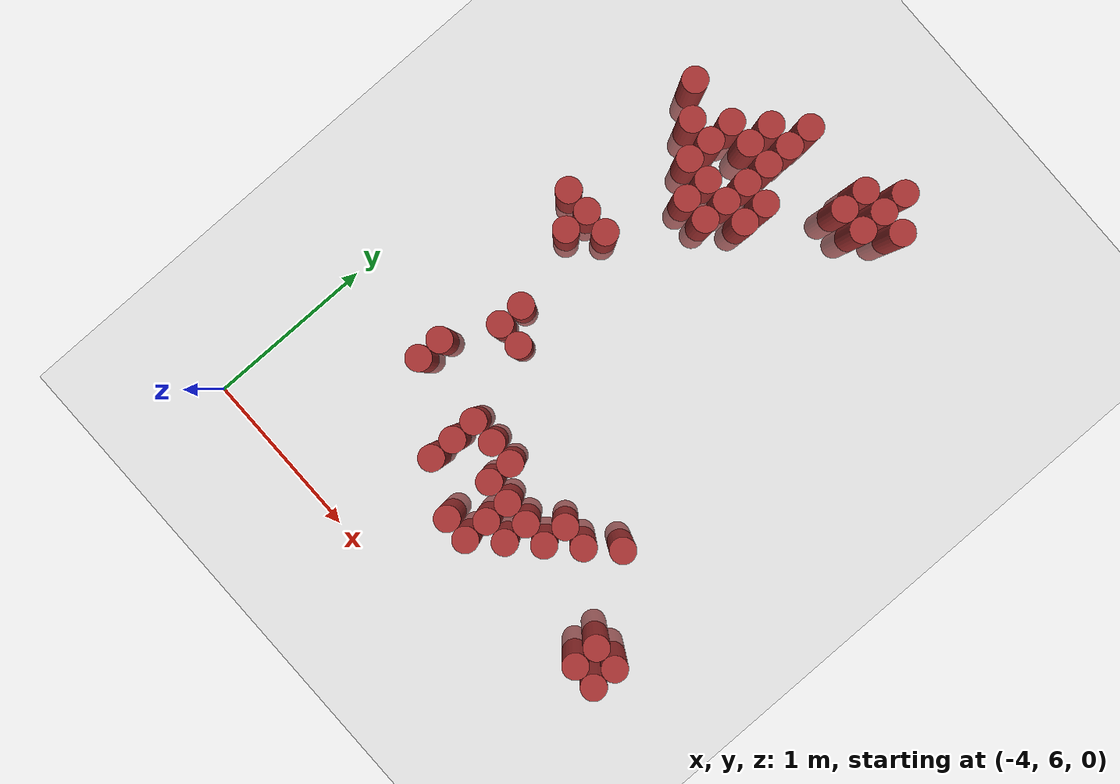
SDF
<sdf version="1.6">
 <world name="default">
  <model name="ground_plane">
   <static>1</static>
   <link name="link">
    <collision name="collision">
     <geometry><plane><normal>0 0 1</normal><size>100 100</size></plane></geometry>
     <surface><friction><ode><mu>100</mu><mu2>50</mu2></ode></friction></surface>
    </collision>
    <visual name="visual">
     <cast_shadows>0</cast_shadows>
     <geometry><plane><normal>0 0 1</normal><size>100 100</size></plane></geometry>
     <material>
      <script><uri>file://media/materials/scripts/gazebo.material</uri><name>Gazebo/Grey</name></script>
     </material>
    </visual>
   </link>
  </model>
  <model name="unit_cylinder_171">
   <static>1</static>
   <pose>-3.525000 8.175000 0.000000 0.000000 0.000000 0.000000</pose>
   <link name="link">
    <inertial>
     <mass>1</mass>
     <inertia><ixx>0.145833</ixx><ixy>0</ixy><ixz>0</ixz><iyy>0.145833</iyy><iyz>0</iyz><izz>0.125</izz></inertia>
    </inertial>
    <collision name="collision">
     <geometry><cylinder><radius>0.075000</radius><length>1</length></cylinder></geometry>
    </collision>
    <visual name="visual">
     <geometry><cylinder><radius>0.075000</radius><length>1</length></cylinder></geometry>
     <material>
      <ambient>0.648000 0.192000 0.192000 1</ambient>
      <diffuse>0.648000 0.192000 0.192000 1</diffuse>
     </material>
     <material>
      <script><name>Gazebo/Grey</name><uri>file://media/materials/scripts/gazebo.material</uri></script>
     </material>
    </visual>
   </link>
  </model>
  <model name="unit_cylinder_172">
   <static>1</static>
   <pose>-3.525000 9.075000 0.000000 0.000000 0.000000 0.000000</pose>
   <link name="link">
    <inertial>
     <mass>1</mass>
     <inertia><ixx>0.145833</ixx><ixy>0</ixy><ixz>0</ixz><iyy>0.145833</iyy><iyz>0</iyz><izz>0.125</izz></inertia>
    </inertial>
    <collision name="collision">
     <geometry><cylinder><radius>0.075000</radius><length>1</length></cylinder></geometry>
    </collision>
    <visual name="visual">
     <geometry><cylinder><radius>0.075000</radius><length>1</length></cylinder></geometry>
     <material>
      <ambient>0.648000 0.192000 0.192000 1</ambient>
      <diffuse>0.648000 0.192000 0.192000 1</diffuse>
     </material>
     <material>
      <script><name>Gazebo/Grey</name><uri>file://media/materials/scripts/gazebo.material</uri></script>
     </material>
    </visual>
   </link>
  </model>
  <model name="unit_cylinder_174">
   <static>1</static>
   <pose>-3.375000 6.975000 0.000000 0.000000 0.000000 0.000000</pose>
   <link name="link">
    <inertial>
     <mass>1</mass>
     <inertia><ixx>0.145833</ixx><ixy>0</ixy><ixz>0</ixz><iyy>0.145833</iyy><iyz>0</iyz><izz>0.125</izz></inertia>
    </inertial>
    <collision name="collision">
     <geometry><cylinder><radius>0.075000</radius><length>1</length></cylinder></geometry>
    </collision>
    <visual name="visual">
     <geometry><cylinder><radius>0.075000</radius><length>1</length></cylinder></geometry>
     <material>
      <ambient>0.648000 0.192000 0.192000 1</ambient>
      <diffuse>0.648000 0.192000 0.192000 1</diffuse>
     </material>
     <material>
      <script><name>Gazebo/Grey</name><uri>file://media/materials/scripts/gazebo.material</uri></script>
     </material>
    </visual>
   </link>
  </model>
  <model name="unit_cylinder_175">
   <static>1</static>
   <pose>-3.375000 7.125000 0.000000 0.000000 0.000000 0.000000</pose>
   <link name="link">
    <inertial>
     <mass>1</mass>
     <inertia><ixx>0.145833</ixx><ixy>0</ixy><ixz>0</ixz><iyy>0.145833</iyy><iyz>0</iyz><izz>0.125</izz></inertia>
    </inertial>
    <collision name="collision">
     <geometry><cylinder><radius>0.075000</radius><length>1</length></cylinder></geometry>
    </collision>
    <visual name="visual">
     <geometry><cylinder><radius>0.075000</radius><length>1</length></cylinder></geometry>
     <material>
      <ambient>0.648000 0.192000 0.192000 1</ambient>
      <diffuse>0.648000 0.192000 0.192000 1</diffuse>
     </material>
     <material>
      <script><name>Gazebo/Grey</name><uri>file://media/materials/scripts/gazebo.material</uri></script>
     </material>
    </visual>
   </link>
  </model>
  <model name="unit_cylinder_176">
   <static>1</static>
   <pose>-3.375000 8.025000 0.000000 0.000000 0.000000 0.000000</pose>
   <link name="link">
    <inertial>
     <mass>1</mass>
     <inertia><ixx>0.145833</ixx><ixy>0</ixy><ixz>0</ixz><iyy>0.145833</iyy><iyz>0</iyz><izz>0.125</izz></inertia>
    </inertial>
    <collision name="collision">
     <geometry><cylinder><radius>0.075000</radius><length>1</length></cylinder></geometry>
    </collision>
    <visual name="visual">
     <geometry><cylinder><radius>0.075000</radius><length>1</length></cylinder></geometry>
     <material>
      <ambient>0.648000 0.192000 0.192000 1</ambient>
      <diffuse>0.648000 0.192000 0.192000 1</diffuse>
     </material>
     <material>
      <script><name>Gazebo/Grey</name><uri>file://media/materials/scripts/gazebo.material</uri></script>
     </material>
    </visual>
   </link>
  </model>
  <model name="unit_cylinder_177">
   <static>1</static>
   <pose>-3.375000 8.175000 0.000000 0.000000 0.000000 0.000000</pose>
   <link name="link">
    <inertial>
     <mass>1</mass>
     <inertia><ixx>0.145833</ixx><ixy>0</ixy><ixz>0</ixz><iyy>0.145833</iyy><iyz>0</iyz><izz>0.125</izz></inertia>
    </inertial>
    <collision name="collision">
     <geometry><cylinder><radius>0.075000</radius><length>1</length></cylinder></geometry>
    </collision>
    <visual name="visual">
     <geometry><cylinder><radius>0.075000</radius><length>1</length></cylinder></geometry>
     <material>
      <ambient>0.648000 0.192000 0.192000 1</ambient>
      <diffuse>0.648000 0.192000 0.192000 1</diffuse>
     </material>
     <material>
      <script><name>Gazebo/Grey</name><uri>file://media/materials/scripts/gazebo.material</uri></script>
     </material>
    </visual>
   </link>
  </model>
  <model name="unit_cylinder_178">
   <static>1</static>
   <pose>-3.375000 8.925000 0.000000 0.000000 0.000000 0.000000</pose>
   <link name="link">
    <inertial>
     <mass>1</mass>
     <inertia><ixx>0.145833</ixx><ixy>0</ixy><ixz>0</ixz><iyy>0.145833</iyy><iyz>0</iyz><izz>0.125</izz></inertia>
    </inertial>
    <collision name="collision">
     <geometry><cylinder><radius>0.075000</radius><length>1</length></cylinder></geometry>
    </collision>
    <visual name="visual">
     <geometry><cylinder><radius>0.075000</radius><length>1</length></cylinder></geometry>
     <material>
      <ambient>0.648000 0.192000 0.192000 1</ambient>
      <diffuse>0.648000 0.192000 0.192000 1</diffuse>
     </material>
     <material>
      <script><name>Gazebo/Grey</name><uri>file://media/materials/scripts/gazebo.material</uri></script>
     </material>
    </visual>
   </link>
  </model>
  <model name="unit_cylinder_181">
   <static>1</static>
   <pose>-3.225000 7.425000 0.000000 0.000000 0.000000 0.000000</pose>
   <link name="link">
    <inertial>
     <mass>1</mass>
     <inertia><ixx>0.145833</ixx><ixy>0</ixy><ixz>0</ixz><iyy>0.145833</iyy><iyz>0</iyz><izz>0.125</izz></inertia>
    </inertial>
    <collision name="collision">
     <geometry><cylinder><radius>0.075000</radius><length>1</length></cylinder></geometry>
    </collision>
    <visual name="visual">
     <geometry><cylinder><radius>0.075000</radius><length>1</length></cylinder></geometry>
     <material>
      <ambient>0.648000 0.192000 0.192000 1</ambient>
      <diffuse>0.648000 0.192000 0.192000 1</diffuse>
     </material>
     <material>
      <script><name>Gazebo/Grey</name><uri>file://media/materials/scripts/gazebo.material</uri></script>
     </material>
    </visual>
   </link>
  </model>
  <model name="unit_cylinder_182">
   <static>1</static>
   <pose>-3.225000 7.575000 0.000000 0.000000 0.000000 0.000000</pose>
   <link name="link">
    <inertial>
     <mass>1</mass>
     <inertia><ixx>0.145833</ixx><ixy>0</ixy><ixz>0</ixz><iyy>0.145833</iyy><iyz>0</iyz><izz>0.125</izz></inertia>
    </inertial>
    <collision name="collision">
     <geometry><cylinder><radius>0.075000</radius><length>1</length></cylinder></geometry>
    </collision>
    <visual name="visual">
     <geometry><cylinder><radius>0.075000</radius><length>1</length></cylinder></geometry>
     <material>
      <ambient>0.648000 0.192000 0.192000 1</ambient>
      <diffuse>0.648000 0.192000 0.192000 1</diffuse>
     </material>
     <material>
      <script><name>Gazebo/Grey</name><uri>file://media/materials/scripts/gazebo.material</uri></script>
     </material>
    </visual>
   </link>
  </model>
  <model name="unit_cylinder_183">
   <static>1</static>
   <pose>-3.225000 8.175000 0.000000 0.000000 0.000000 0.000000</pose>
   <link name="link">
    <inertial>
     <mass>1</mass>
     <inertia><ixx>0.145833</ixx><ixy>0</ixy><ixz>0</ixz><iyy>0.145833</iyy><iyz>0</iyz><izz>0.125</izz></inertia>
    </inertial>
    <collision name="collision">
     <geometry><cylinder><radius>0.075000</radius><length>1</length></cylinder></geometry>
    </collision>
    <visual name="visual">
     <geometry><cylinder><radius>0.075000</radius><length>1</length></cylinder></geometry>
     <material>
      <ambient>0.648000 0.192000 0.192000 1</ambient>
      <diffuse>0.648000 0.192000 0.192000 1</diffuse>
     </material>
     <material>
      <script><name>Gazebo/Grey</name><uri>file://media/materials/scripts/gazebo.material</uri></script>
     </material>
    </visual>
   </link>
  </model>
  <model name="unit_cylinder_184">
   <static>1</static>
   <pose>-3.225000 8.775000 0.000000 0.000000 0.000000 0.000000</pose>
   <link name="link">
    <inertial>
     <mass>1</mass>
     <inertia><ixx>0.145833</ixx><ixy>0</ixy><ixz>0</ixz><iyy>0.145833</iyy><iyz>0</iyz><izz>0.125</izz></inertia>
    </inertial>
    <collision name="collision">
     <geometry><cylinder><radius>0.075000</radius><length>1</length></cylinder></geometry>
    </collision>
    <visual name="visual">
     <geometry><cylinder><radius>0.075000</radius><length>1</length></cylinder></geometry>
     <material>
      <ambient>0.648000 0.192000 0.192000 1</ambient>
      <diffuse>0.648000 0.192000 0.192000 1</diffuse>
     </material>
     <material>
      <script><name>Gazebo/Grey</name><uri>file://media/materials/scripts/gazebo.material</uri></script>
     </material>
    </visual>
   </link>
  </model>
  <model name="unit_cylinder_185">
   <static>1</static>
   <pose>-3.225000 8.925000 0.000000 0.000000 0.000000 0.000000</pose>
   <link name="link">
    <inertial>
     <mass>1</mass>
     <inertia><ixx>0.145833</ixx><ixy>0</ixy><ixz>0</ixz><iyy>0.145833</iyy><iyz>0</iyz><izz>0.125</izz></inertia>
    </inertial>
    <collision name="collision">
     <geometry><cylinder><radius>0.075000</radius><length>1</length></cylinder></geometry>
    </collision>
    <visual name="visual">
     <geometry><cylinder><radius>0.075000</radius><length>1</length></cylinder></geometry>
     <material>
      <ambient>0.648000 0.192000 0.192000 1</ambient>
      <diffuse>0.648000 0.192000 0.192000 1</diffuse>
     </material>
     <material>
      <script><name>Gazebo/Grey</name><uri>file://media/materials/scripts/gazebo.material</uri></script>
     </material>
    </visual>
   </link>
  </model>
  <model name="unit_cylinder_186">
   <static>1</static>
   <pose>-3.225000 9.075000 0.000000 0.000000 0.000000 0.000000</pose>
   <link name="link">
    <inertial>
     <mass>1</mass>
     <inertia><ixx>0.145833</ixx><ixy>0</ixy><ixz>0</ixz><iyy>0.145833</iyy><iyz>0</iyz><izz>0.125</izz></inertia>
    </inertial>
    <collision name="collision">
     <geometry><cylinder><radius>0.075000</radius><length>1</length></cylinder></geometry>
    </collision>
    <visual name="visual">
     <geometry><cylinder><radius>0.075000</radius><length>1</length></cylinder></geometry>
     <material>
      <ambient>0.648000 0.192000 0.192000 1</ambient>
      <diffuse>0.648000 0.192000 0.192000 1</diffuse>
     </material>
     <material>
      <script><name>Gazebo/Grey</name><uri>file://media/materials/scripts/gazebo.material</uri></script>
     </material>
    </visual>
   </link>
  </model>
  <model name="unit_cylinder_189">
   <static>1</static>
   <pose>-3.075000 7.425000 0.000000 0.000000 0.000000 0.000000</pose>
   <link name="link">
    <inertial>
     <mass>1</mass>
     <inertia><ixx>0.145833</ixx><ixy>0</ixy><ixz>0</ixz><iyy>0.145833</iyy><iyz>0</iyz><izz>0.125</izz></inertia>
    </inertial>
    <collision name="collision">
     <geometry><cylinder><radius>0.075000</radius><length>1</length></cylinder></geometry>
    </collision>
    <visual name="visual">
     <geometry><cylinder><radius>0.075000</radius><length>1</length></cylinder></geometry>
     <material>
      <ambient>0.648000 0.192000 0.192000 1</ambient>
      <diffuse>0.648000 0.192000 0.192000 1</diffuse>
     </material>
     <material>
      <script><name>Gazebo/Grey</name><uri>file://media/materials/scripts/gazebo.material</uri></script>
     </material>
    </visual>
   </link>
  </model>
  <model name="unit_cylinder_190">
   <static>1</static>
   <pose>-3.075000 8.625000 0.000000 0.000000 0.000000 0.000000</pose>
   <link name="link">
    <inertial>
     <mass>1</mass>
     <inertia><ixx>0.145833</ixx><ixy>0</ixy><ixz>0</ixz><iyy>0.145833</iyy><iyz>0</iyz><izz>0.125</izz></inertia>
    </inertial>
    <collision name="collision">
     <geometry><cylinder><radius>0.075000</radius><length>1</length></cylinder></geometry>
    </collision>
    <visual name="visual">
     <geometry><cylinder><radius>0.075000</radius><length>1</length></cylinder></geometry>
     <material>
      <ambient>0.648000 0.192000 0.192000 1</ambient>
      <diffuse>0.648000 0.192000 0.192000 1</diffuse>
     </material>
     <material>
      <script><name>Gazebo/Grey</name><uri>file://media/materials/scripts/gazebo.material</uri></script>
     </material>
    </visual>
   </link>
  </model>
  <model name="unit_cylinder_191">
   <static>1</static>
   <pose>-3.075000 8.775000 0.000000 0.000000 0.000000 0.000000</pose>
   <link name="link">
    <inertial>
     <mass>1</mass>
     <inertia><ixx>0.145833</ixx><ixy>0</ixy><ixz>0</ixz><iyy>0.145833</iyy><iyz>0</iyz><izz>0.125</izz></inertia>
    </inertial>
    <collision name="collision">
     <geometry><cylinder><radius>0.075000</radius><length>1</length></cylinder></geometry>
    </collision>
    <visual name="visual">
     <geometry><cylinder><radius>0.075000</radius><length>1</length></cylinder></geometry>
     <material>
      <ambient>0.648000 0.192000 0.192000 1</ambient>
      <diffuse>0.648000 0.192000 0.192000 1</diffuse>
     </material>
     <material>
      <script><name>Gazebo/Grey</name><uri>file://media/materials/scripts/gazebo.material</uri></script>
     </material>
    </visual>
   </link>
  </model>
  <model name="unit_cylinder_192">
   <static>1</static>
   <pose>-3.075000 9.075000 0.000000 0.000000 0.000000 0.000000</pose>
   <link name="link">
    <inertial>
     <mass>1</mass>
     <inertia><ixx>0.145833</ixx><ixy>0</ixy><ixz>0</ixz><iyy>0.145833</iyy><iyz>0</iyz><izz>0.125</izz></inertia>
    </inertial>
    <collision name="collision">
     <geometry><cylinder><radius>0.075000</radius><length>1</length></cylinder></geometry>
    </collision>
    <visual name="visual">
     <geometry><cylinder><radius>0.075000</radius><length>1</length></cylinder></geometry>
     <material>
      <ambient>0.648000 0.192000 0.192000 1</ambient>
      <diffuse>0.648000 0.192000 0.192000 1</diffuse>
     </material>
     <material>
      <script><name>Gazebo/Grey</name><uri>file://media/materials/scripts/gazebo.material</uri></script>
     </material>
    </visual>
   </link>
  </model>
  <model name="unit_cylinder_193">
   <static>1</static>
   <pose>-3.075000 9.225000 0.000000 0.000000 0.000000 0.000000</pose>
   <link name="link">
    <inertial>
     <mass>1</mass>
     <inertia><ixx>0.145833</ixx><ixy>0</ixy><ixz>0</ixz><iyy>0.145833</iyy><iyz>0</iyz><izz>0.125</izz></inertia>
    </inertial>
    <collision name="collision">
     <geometry><cylinder><radius>0.075000</radius><length>1</length></cylinder></geometry>
    </collision>
    <visual name="visual">
     <geometry><cylinder><radius>0.075000</radius><length>1</length></cylinder></geometry>
     <material>
      <ambient>0.648000 0.192000 0.192000 1</ambient>
      <diffuse>0.648000 0.192000 0.192000 1</diffuse>
     </material>
     <material>
      <script><name>Gazebo/Grey</name><uri>file://media/materials/scripts/gazebo.material</uri></script>
     </material>
    </visual>
   </link>
  </model>
  <model name="unit_cylinder_196">
   <static>1</static>
   <pose>-2.925000 6.675000 0.000000 0.000000 0.000000 0.000000</pose>
   <link name="link">
    <inertial>
     <mass>1</mass>
     <inertia><ixx>0.145833</ixx><ixy>0</ixy><ixz>0</ixz><iyy>0.145833</iyy><iyz>0</iyz><izz>0.125</izz></inertia>
    </inertial>
    <collision name="collision">
     <geometry><cylinder><radius>0.075000</radius><length>1</length></cylinder></geometry>
    </collision>
    <visual name="visual">
     <geometry><cylinder><radius>0.075000</radius><length>1</length></cylinder></geometry>
     <material>
      <ambient>0.648000 0.192000 0.192000 1</ambient>
      <diffuse>0.648000 0.192000 0.192000 1</diffuse>
     </material>
     <material>
      <script><name>Gazebo/Grey</name><uri>file://media/materials/scripts/gazebo.material</uri></script>
     </material>
    </visual>
   </link>
  </model>
  <model name="unit_cylinder_197">
   <static>1</static>
   <pose>-2.925000 6.825000 0.000000 0.000000 0.000000 0.000000</pose>
   <link name="link">
    <inertial>
     <mass>1</mass>
     <inertia><ixx>0.145833</ixx><ixy>0</ixy><ixz>0</ixz><iyy>0.145833</iyy><iyz>0</iyz><izz>0.125</izz></inertia>
    </inertial>
    <collision name="collision">
     <geometry><cylinder><radius>0.075000</radius><length>1</length></cylinder></geometry>
    </collision>
    <visual name="visual">
     <geometry><cylinder><radius>0.075000</radius><length>1</length></cylinder></geometry>
     <material>
      <ambient>0.648000 0.192000 0.192000 1</ambient>
      <diffuse>0.648000 0.192000 0.192000 1</diffuse>
     </material>
     <material>
      <script><name>Gazebo/Grey</name><uri>file://media/materials/scripts/gazebo.material</uri></script>
     </material>
    </visual>
   </link>
  </model>
  <model name="unit_cylinder_198">
   <static>1</static>
   <pose>-2.925000 6.975000 0.000000 0.000000 0.000000 0.000000</pose>
   <link name="link">
    <inertial>
     <mass>1</mass>
     <inertia><ixx>0.145833</ixx><ixy>0</ixy><ixz>0</ixz><iyy>0.145833</iyy><iyz>0</iyz><izz>0.125</izz></inertia>
    </inertial>
    <collision name="collision">
     <geometry><cylinder><radius>0.075000</radius><length>1</length></cylinder></geometry>
    </collision>
    <visual name="visual">
     <geometry><cylinder><radius>0.075000</radius><length>1</length></cylinder></geometry>
     <material>
      <ambient>0.648000 0.192000 0.192000 1</ambient>
      <diffuse>0.648000 0.192000 0.192000 1</diffuse>
     </material>
     <material>
      <script><name>Gazebo/Grey</name><uri>file://media/materials/scripts/gazebo.material</uri></script>
     </material>
    </visual>
   </link>
  </model>
  <model name="unit_cylinder_199">
   <static>1</static>
   <pose>-2.925000 8.625000 0.000000 0.000000 0.000000 0.000000</pose>
   <link name="link">
    <inertial>
     <mass>1</mass>
     <inertia><ixx>0.145833</ixx><ixy>0</ixy><ixz>0</ixz><iyy>0.145833</iyy><iyz>0</iyz><izz>0.125</izz></inertia>
    </inertial>
    <collision name="collision">
     <geometry><cylinder><radius>0.075000</radius><length>1</length></cylinder></geometry>
    </collision>
    <visual name="visual">
     <geometry><cylinder><radius>0.075000</radius><length>1</length></cylinder></geometry>
     <material>
      <ambient>0.648000 0.192000 0.192000 1</ambient>
      <diffuse>0.648000 0.192000 0.192000 1</diffuse>
     </material>
     <material>
      <script><name>Gazebo/Grey</name><uri>file://media/materials/scripts/gazebo.material</uri></script>
     </material>
    </visual>
   </link>
  </model>
  <model name="unit_cylinder_200">
   <static>1</static>
   <pose>-2.925000 8.775000 0.000000 0.000000 0.000000 0.000000</pose>
   <link name="link">
    <inertial>
     <mass>1</mass>
     <inertia><ixx>0.145833</ixx><ixy>0</ixy><ixz>0</ixz><iyy>0.145833</iyy><iyz>0</iyz><izz>0.125</izz></inertia>
    </inertial>
    <collision name="collision">
     <geometry><cylinder><radius>0.075000</radius><length>1</length></cylinder></geometry>
    </collision>
    <visual name="visual">
     <geometry><cylinder><radius>0.075000</radius><length>1</length></cylinder></geometry>
     <material>
      <ambient>0.648000 0.192000 0.192000 1</ambient>
      <diffuse>0.648000 0.192000 0.192000 1</diffuse>
     </material>
     <material>
      <script><name>Gazebo/Grey</name><uri>file://media/materials/scripts/gazebo.material</uri></script>
     </material>
    </visual>
   </link>
  </model>
  <model name="unit_cylinder_201">
   <static>1</static>
   <pose>-2.925000 8.925000 0.000000 0.000000 0.000000 0.000000</pose>
   <link name="link">
    <inertial>
     <mass>1</mass>
     <inertia><ixx>0.145833</ixx><ixy>0</ixy><ixz>0</ixz><iyy>0.145833</iyy><iyz>0</iyz><izz>0.125</izz></inertia>
    </inertial>
    <collision name="collision">
     <geometry><cylinder><radius>0.075000</radius><length>1</length></cylinder></geometry>
    </collision>
    <visual name="visual">
     <geometry><cylinder><radius>0.075000</radius><length>1</length></cylinder></geometry>
     <material>
      <ambient>0.648000 0.192000 0.192000 1</ambient>
      <diffuse>0.648000 0.192000 0.192000 1</diffuse>
     </material>
     <material>
      <script><name>Gazebo/Grey</name><uri>file://media/materials/scripts/gazebo.material</uri></script>
     </material>
    </visual>
   </link>
  </model>
  <model name="unit_cylinder_202">
   <static>1</static>
   <pose>-2.925000 9.075000 0.000000 0.000000 0.000000 0.000000</pose>
   <link name="link">
    <inertial>
     <mass>1</mass>
     <inertia><ixx>0.145833</ixx><ixy>0</ixy><ixz>0</ixz><iyy>0.145833</iyy><iyz>0</iyz><izz>0.125</izz></inertia>
    </inertial>
    <collision name="collision">
     <geometry><cylinder><radius>0.075000</radius><length>1</length></cylinder></geometry>
    </collision>
    <visual name="visual">
     <geometry><cylinder><radius>0.075000</radius><length>1</length></cylinder></geometry>
     <material>
      <ambient>0.648000 0.192000 0.192000 1</ambient>
      <diffuse>0.648000 0.192000 0.192000 1</diffuse>
     </material>
     <material>
      <script><name>Gazebo/Grey</name><uri>file://media/materials/scripts/gazebo.material</uri></script>
     </material>
    </visual>
   </link>
  </model>
  <model name="unit_cylinder_203">
   <static>1</static>
   <pose>-2.925000 9.225000 0.000000 0.000000 0.000000 0.000000</pose>
   <link name="link">
    <inertial>
     <mass>1</mass>
     <inertia><ixx>0.145833</ixx><ixy>0</ixy><ixz>0</ixz><iyy>0.145833</iyy><iyz>0</iyz><izz>0.125</izz></inertia>
    </inertial>
    <collision name="collision">
     <geometry><cylinder><radius>0.075000</radius><length>1</length></cylinder></geometry>
    </collision>
    <visual name="visual">
     <geometry><cylinder><radius>0.075000</radius><length>1</length></cylinder></geometry>
     <material>
      <ambient>0.648000 0.192000 0.192000 1</ambient>
      <diffuse>0.648000 0.192000 0.192000 1</diffuse>
     </material>
     <material>
      <script><name>Gazebo/Grey</name><uri>file://media/materials/scripts/gazebo.material</uri></script>
     </material>
    </visual>
   </link>
  </model>
  <model name="unit_cylinder_204">
   <static>1</static>
   <pose>-2.925000 9.375000 0.000000 0.000000 0.000000 0.000000</pose>
   <link name="link">
    <inertial>
     <mass>1</mass>
     <inertia><ixx>0.145833</ixx><ixy>0</ixy><ixz>0</ixz><iyy>0.145833</iyy><iyz>0</iyz><izz>0.125</izz></inertia>
    </inertial>
    <collision name="collision">
     <geometry><cylinder><radius>0.075000</radius><length>1</length></cylinder></geometry>
    </collision>
    <visual name="visual">
     <geometry><cylinder><radius>0.075000</radius><length>1</length></cylinder></geometry>
     <material>
      <ambient>0.648000 0.192000 0.192000 1</ambient>
      <diffuse>0.648000 0.192000 0.192000 1</diffuse>
     </material>
     <material>
      <script><name>Gazebo/Grey</name><uri>file://media/materials/scripts/gazebo.material</uri></script>
     </material>
    </visual>
   </link>
  </model>
  <model name="unit_cylinder_211">
   <static>1</static>
   <pose>-2.775000 6.975000 0.000000 0.000000 0.000000 0.000000</pose>
   <link name="link">
    <inertial>
     <mass>1</mass>
     <inertia><ixx>0.145833</ixx><ixy>0</ixy><ixz>0</ixz><iyy>0.145833</iyy><iyz>0</iyz><izz>0.125</izz></inertia>
    </inertial>
    <collision name="collision">
     <geometry><cylinder><radius>0.075000</radius><length>1</length></cylinder></geometry>
    </collision>
    <visual name="visual">
     <geometry><cylinder><radius>0.075000</radius><length>1</length></cylinder></geometry>
     <material>
      <ambient>0.648000 0.192000 0.192000 1</ambient>
      <diffuse>0.648000 0.192000 0.192000 1</diffuse>
     </material>
     <material>
      <script><name>Gazebo/Grey</name><uri>file://media/materials/scripts/gazebo.material</uri></script>
     </material>
    </visual>
   </link>
  </model>
  <model name="unit_cylinder_212">
   <static>1</static>
   <pose>-2.775000 8.775000 0.000000 0.000000 0.000000 0.000000</pose>
   <link name="link">
    <inertial>
     <mass>1</mass>
     <inertia><ixx>0.145833</ixx><ixy>0</ixy><ixz>0</ixz><iyy>0.145833</iyy><iyz>0</iyz><izz>0.125</izz></inertia>
    </inertial>
    <collision name="collision">
     <geometry><cylinder><radius>0.075000</radius><length>1</length></cylinder></geometry>
    </collision>
    <visual name="visual">
     <geometry><cylinder><radius>0.075000</radius><length>1</length></cylinder></geometry>
     <material>
      <ambient>0.648000 0.192000 0.192000 1</ambient>
      <diffuse>0.648000 0.192000 0.192000 1</diffuse>
     </material>
     <material>
      <script><name>Gazebo/Grey</name><uri>file://media/materials/scripts/gazebo.material</uri></script>
     </material>
    </visual>
   </link>
  </model>
  <model name="unit_cylinder_213">
   <static>1</static>
   <pose>-2.775000 8.925000 0.000000 0.000000 0.000000 0.000000</pose>
   <link name="link">
    <inertial>
     <mass>1</mass>
     <inertia><ixx>0.145833</ixx><ixy>0</ixy><ixz>0</ixz><iyy>0.145833</iyy><iyz>0</iyz><izz>0.125</izz></inertia>
    </inertial>
    <collision name="collision">
     <geometry><cylinder><radius>0.075000</radius><length>1</length></cylinder></geometry>
    </collision>
    <visual name="visual">
     <geometry><cylinder><radius>0.075000</radius><length>1</length></cylinder></geometry>
     <material>
      <ambient>0.648000 0.192000 0.192000 1</ambient>
      <diffuse>0.648000 0.192000 0.192000 1</diffuse>
     </material>
     <material>
      <script><name>Gazebo/Grey</name><uri>file://media/materials/scripts/gazebo.material</uri></script>
     </material>
    </visual>
   </link>
  </model>
  <model name="unit_cylinder_219">
   <static>1</static>
   <pose>-2.625000 6.525000 0.000000 0.000000 0.000000 0.000000</pose>
   <link name="link">
    <inertial>
     <mass>1</mass>
     <inertia><ixx>0.145833</ixx><ixy>0</ixy><ixz>0</ixz><iyy>0.145833</iyy><iyz>0</iyz><izz>0.125</izz></inertia>
    </inertial>
    <collision name="collision">
     <geometry><cylinder><radius>0.075000</radius><length>1</length></cylinder></geometry>
    </collision>
    <visual name="visual">
     <geometry><cylinder><radius>0.075000</radius><length>1</length></cylinder></geometry>
     <material>
      <ambient>0.648000 0.192000 0.192000 1</ambient>
      <diffuse>0.648000 0.192000 0.192000 1</diffuse>
     </material>
     <material>
      <script><name>Gazebo/Grey</name><uri>file://media/materials/scripts/gazebo.material</uri></script>
     </material>
    </visual>
   </link>
  </model>
  <model name="unit_cylinder_220">
   <static>1</static>
   <pose>-2.625000 6.825000 0.000000 0.000000 0.000000 0.000000</pose>
   <link name="link">
    <inertial>
     <mass>1</mass>
     <inertia><ixx>0.145833</ixx><ixy>0</ixy><ixz>0</ixz><iyy>0.145833</iyy><iyz>0</iyz><izz>0.125</izz></inertia>
    </inertial>
    <collision name="collision">
     <geometry><cylinder><radius>0.075000</radius><length>1</length></cylinder></geometry>
    </collision>
    <visual name="visual">
     <geometry><cylinder><radius>0.075000</radius><length>1</length></cylinder></geometry>
     <material>
      <ambient>0.648000 0.192000 0.192000 1</ambient>
      <diffuse>0.648000 0.192000 0.192000 1</diffuse>
     </material>
     <material>
      <script><name>Gazebo/Grey</name><uri>file://media/materials/scripts/gazebo.material</uri></script>
     </material>
    </visual>
   </link>
  </model>
  <model name="unit_cylinder_221">
   <static>1</static>
   <pose>-2.625000 6.975000 0.000000 0.000000 0.000000 0.000000</pose>
   <link name="link">
    <inertial>
     <mass>1</mass>
     <inertia><ixx>0.145833</ixx><ixy>0</ixy><ixz>0</ixz><iyy>0.145833</iyy><iyz>0</iyz><izz>0.125</izz></inertia>
    </inertial>
    <collision name="collision">
     <geometry><cylinder><radius>0.075000</radius><length>1</length></cylinder></geometry>
    </collision>
    <visual name="visual">
     <geometry><cylinder><radius>0.075000</radius><length>1</length></cylinder></geometry>
     <material>
      <ambient>0.648000 0.192000 0.192000 1</ambient>
      <diffuse>0.648000 0.192000 0.192000 1</diffuse>
     </material>
     <material>
      <script><name>Gazebo/Grey</name><uri>file://media/materials/scripts/gazebo.material</uri></script>
     </material>
    </visual>
   </link>
  </model>
  <model name="unit_cylinder_223">
   <static>1</static>
   <pose>-2.475000 6.525000 0.000000 0.000000 0.000000 0.000000</pose>
   <link name="link">
    <inertial>
     <mass>1</mass>
     <inertia><ixx>0.145833</ixx><ixy>0</ixy><ixz>0</ixz><iyy>0.145833</iyy><iyz>0</iyz><izz>0.125</izz></inertia>
    </inertial>
    <collision name="collision">
     <geometry><cylinder><radius>0.075000</radius><length>1</length></cylinder></geometry>
    </collision>
    <visual name="visual">
     <geometry><cylinder><radius>0.075000</radius><length>1</length></cylinder></geometry>
     <material>
      <ambient>0.648000 0.192000 0.192000 1</ambient>
      <diffuse>0.648000 0.192000 0.192000 1</diffuse>
     </material>
     <material>
      <script><name>Gazebo/Grey</name><uri>file://media/materials/scripts/gazebo.material</uri></script>
     </material>
    </visual>
   </link>
  </model>
  <model name="unit_cylinder_224">
   <static>1</static>
   <pose>-2.475000 6.675000 0.000000 0.000000 0.000000 0.000000</pose>
   <link name="link">
    <inertial>
     <mass>1</mass>
     <inertia><ixx>0.145833</ixx><ixy>0</ixy><ixz>0</ixz><iyy>0.145833</iyy><iyz>0</iyz><izz>0.125</izz></inertia>
    </inertial>
    <collision name="collision">
     <geometry><cylinder><radius>0.075000</radius><length>1</length></cylinder></geometry>
    </collision>
    <visual name="visual">
     <geometry><cylinder><radius>0.075000</radius><length>1</length></cylinder></geometry>
     <material>
      <ambient>0.648000 0.192000 0.192000 1</ambient>
      <diffuse>0.648000 0.192000 0.192000 1</diffuse>
     </material>
     <material>
      <script><name>Gazebo/Grey</name><uri>file://media/materials/scripts/gazebo.material</uri></script>
     </material>
    </visual>
   </link>
  </model>
  <model name="unit_cylinder_225">
   <static>1</static>
   <pose>-2.475000 6.825000 0.000000 0.000000 0.000000 0.000000</pose>
   <link name="link">
    <inertial>
     <mass>1</mass>
     <inertia><ixx>0.145833</ixx><ixy>0</ixy><ixz>0</ixz><iyy>0.145833</iyy><iyz>0</iyz><izz>0.125</izz></inertia>
    </inertial>
    <collision name="collision">
     <geometry><cylinder><radius>0.075000</radius><length>1</length></cylinder></geometry>
    </collision>
    <visual name="visual">
     <geometry><cylinder><radius>0.075000</radius><length>1</length></cylinder></geometry>
     <material>
      <ambient>0.648000 0.192000 0.192000 1</ambient>
      <diffuse>0.648000 0.192000 0.192000 1</diffuse>
     </material>
     <material>
      <script><name>Gazebo/Grey</name><uri>file://media/materials/scripts/gazebo.material</uri></script>
     </material>
    </visual>
   </link>
  </model>
  <model name="unit_cylinder_226">
   <static>1</static>
   <pose>-2.475000 9.225000 0.000000 0.000000 0.000000 0.000000</pose>
   <link name="link">
    <inertial>
     <mass>1</mass>
     <inertia><ixx>0.145833</ixx><ixy>0</ixy><ixz>0</ixz><iyy>0.145833</iyy><iyz>0</iyz><izz>0.125</izz></inertia>
    </inertial>
    <collision name="collision">
     <geometry><cylinder><radius>0.075000</radius><length>1</length></cylinder></geometry>
    </collision>
    <visual name="visual">
     <geometry><cylinder><radius>0.075000</radius><length>1</length></cylinder></geometry>
     <material>
      <ambient>0.648000 0.192000 0.192000 1</ambient>
      <diffuse>0.648000 0.192000 0.192000 1</diffuse>
     </material>
     <material>
      <script><name>Gazebo/Grey</name><uri>file://media/materials/scripts/gazebo.material</uri></script>
     </material>
    </visual>
   </link>
  </model>
  <model name="unit_cylinder_227">
   <static>1</static>
   <pose>-2.475000 9.375000 0.000000 0.000000 0.000000 0.000000</pose>
   <link name="link">
    <inertial>
     <mass>1</mass>
     <inertia><ixx>0.145833</ixx><ixy>0</ixy><ixz>0</ixz><iyy>0.145833</iyy><iyz>0</iyz><izz>0.125</izz></inertia>
    </inertial>
    <collision name="collision">
     <geometry><cylinder><radius>0.075000</radius><length>1</length></cylinder></geometry>
    </collision>
    <visual name="visual">
     <geometry><cylinder><radius>0.075000</radius><length>1</length></cylinder></geometry>
     <material>
      <ambient>0.648000 0.192000 0.192000 1</ambient>
      <diffuse>0.648000 0.192000 0.192000 1</diffuse>
     </material>
     <material>
      <script><name>Gazebo/Grey</name><uri>file://media/materials/scripts/gazebo.material</uri></script>
     </material>
    </visual>
   </link>
  </model>
  <model name="unit_cylinder_228">
   <static>1</static>
   <pose>-2.325000 6.675000 0.000000 0.000000 0.000000 0.000000</pose>
   <link name="link">
    <inertial>
     <mass>1</mass>
     <inertia><ixx>0.145833</ixx><ixy>0</ixy><ixz>0</ixz><iyy>0.145833</iyy><iyz>0</iyz><izz>0.125</izz></inertia>
    </inertial>
    <collision name="collision">
     <geometry><cylinder><radius>0.075000</radius><length>1</length></cylinder></geometry>
    </collision>
    <visual name="visual">
     <geometry><cylinder><radius>0.075000</radius><length>1</length></cylinder></geometry>
     <material>
      <ambient>0.648000 0.192000 0.192000 1</ambient>
      <diffuse>0.648000 0.192000 0.192000 1</diffuse>
     </material>
     <material>
      <script><name>Gazebo/Grey</name><uri>file://media/materials/scripts/gazebo.material</uri></script>
     </material>
    </visual>
   </link>
  </model>
  <model name="unit_cylinder_229">
   <static>1</static>
   <pose>-2.325000 6.825000 0.000000 0.000000 0.000000 0.000000</pose>
   <link name="link">
    <inertial>
     <mass>1</mass>
     <inertia><ixx>0.145833</ixx><ixy>0</ixy><ixz>0</ixz><iyy>0.145833</iyy><iyz>0</iyz><izz>0.125</izz></inertia>
    </inertial>
    <collision name="collision">
     <geometry><cylinder><radius>0.075000</radius><length>1</length></cylinder></geometry>
    </collision>
    <visual name="visual">
     <geometry><cylinder><radius>0.075000</radius><length>1</length></cylinder></geometry>
     <material>
      <ambient>0.648000 0.192000 0.192000 1</ambient>
      <diffuse>0.648000 0.192000 0.192000 1</diffuse>
     </material>
     <material>
      <script><name>Gazebo/Grey</name><uri>file://media/materials/scripts/gazebo.material</uri></script>
     </material>
    </visual>
   </link>
  </model>
  <model name="unit_cylinder_230">
   <static>1</static>
   <pose>-2.325000 9.225000 0.000000 0.000000 0.000000 0.000000</pose>
   <link name="link">
    <inertial>
     <mass>1</mass>
     <inertia><ixx>0.145833</ixx><ixy>0</ixy><ixz>0</ixz><iyy>0.145833</iyy><iyz>0</iyz><izz>0.125</izz></inertia>
    </inertial>
    <collision name="collision">
     <geometry><cylinder><radius>0.075000</radius><length>1</length></cylinder></geometry>
    </collision>
    <visual name="visual">
     <geometry><cylinder><radius>0.075000</radius><length>1</length></cylinder></geometry>
     <material>
      <ambient>0.648000 0.192000 0.192000 1</ambient>
      <diffuse>0.648000 0.192000 0.192000 1</diffuse>
     </material>
     <material>
      <script><name>Gazebo/Grey</name><uri>file://media/materials/scripts/gazebo.material</uri></script>
     </material>
    </visual>
   </link>
  </model>
  <model name="unit_cylinder_231">
   <static>1</static>
   <pose>-2.325000 9.375000 0.000000 0.000000 0.000000 0.000000</pose>
   <link name="link">
    <inertial>
     <mass>1</mass>
     <inertia><ixx>0.145833</ixx><ixy>0</ixy><ixz>0</ixz><iyy>0.145833</iyy><iyz>0</iyz><izz>0.125</izz></inertia>
    </inertial>
    <collision name="collision">
     <geometry><cylinder><radius>0.075000</radius><length>1</length></cylinder></geometry>
    </collision>
    <visual name="visual">
     <geometry><cylinder><radius>0.075000</radius><length>1</length></cylinder></geometry>
     <material>
      <ambient>0.648000 0.192000 0.192000 1</ambient>
      <diffuse>0.648000 0.192000 0.192000 1</diffuse>
     </material>
     <material>
      <script><name>Gazebo/Grey</name><uri>file://media/materials/scripts/gazebo.material</uri></script>
     </material>
    </visual>
   </link>
  </model>
  <model name="unit_cylinder_232">
   <static>1</static>
   <pose>-2.325000 9.525000 0.000000 0.000000 0.000000 0.000000</pose>
   <link name="link">
    <inertial>
     <mass>1</mass>
     <inertia><ixx>0.145833</ixx><ixy>0</ixy><ixz>0</ixz><iyy>0.145833</iyy><iyz>0</iyz><izz>0.125</izz></inertia>
    </inertial>
    <collision name="collision">
     <geometry><cylinder><radius>0.075000</radius><length>1</length></cylinder></geometry>
    </collision>
    <visual name="visual">
     <geometry><cylinder><radius>0.075000</radius><length>1</length></cylinder></geometry>
     <material>
      <ambient>0.648000 0.192000 0.192000 1</ambient>
      <diffuse>0.648000 0.192000 0.192000 1</diffuse>
     </material>
     <material>
      <script><name>Gazebo/Grey</name><uri>file://media/materials/scripts/gazebo.material</uri></script>
     </material>
    </visual>
   </link>
  </model>
  <model name="unit_cylinder_233">
   <static>1</static>
   <pose>-2.175000 6.825000 0.000000 0.000000 0.000000 0.000000</pose>
   <link name="link">
    <inertial>
     <mass>1</mass>
     <inertia><ixx>0.145833</ixx><ixy>0</ixy><ixz>0</ixz><iyy>0.145833</iyy><iyz>0</iyz><izz>0.125</izz></inertia>
    </inertial>
    <collision name="collision">
     <geometry><cylinder><radius>0.075000</radius><length>1</length></cylinder></geometry>
    </collision>
    <visual name="visual">
     <geometry><cylinder><radius>0.075000</radius><length>1</length></cylinder></geometry>
     <material>
      <ambient>0.648000 0.192000 0.192000 1</ambient>
      <diffuse>0.648000 0.192000 0.192000 1</diffuse>
     </material>
     <material>
      <script><name>Gazebo/Grey</name><uri>file://media/materials/scripts/gazebo.material</uri></script>
     </material>
    </visual>
   </link>
  </model>
  <model name="unit_cylinder_234">
   <static>1</static>
   <pose>-2.175000 6.975000 0.000000 0.000000 0.000000 0.000000</pose>
   <link name="link">
    <inertial>
     <mass>1</mass>
     <inertia><ixx>0.145833</ixx><ixy>0</ixy><ixz>0</ixz><iyy>0.145833</iyy><iyz>0</iyz><izz>0.125</izz></inertia>
    </inertial>
    <collision name="collision">
     <geometry><cylinder><radius>0.075000</radius><length>1</length></cylinder></geometry>
    </collision>
    <visual name="visual">
     <geometry><cylinder><radius>0.075000</radius><length>1</length></cylinder></geometry>
     <material>
      <ambient>0.648000 0.192000 0.192000 1</ambient>
      <diffuse>0.648000 0.192000 0.192000 1</diffuse>
     </material>
     <material>
      <script><name>Gazebo/Grey</name><uri>file://media/materials/scripts/gazebo.material</uri></script>
     </material>
    </visual>
   </link>
  </model>
  <model name="unit_cylinder_235">
   <static>1</static>
   <pose>-2.175000 9.375000 0.000000 0.000000 0.000000 0.000000</pose>
   <link name="link">
    <inertial>
     <mass>1</mass>
     <inertia><ixx>0.145833</ixx><ixy>0</ixy><ixz>0</ixz><iyy>0.145833</iyy><iyz>0</iyz><izz>0.125</izz></inertia>
    </inertial>
    <collision name="collision">
     <geometry><cylinder><radius>0.075000</radius><length>1</length></cylinder></geometry>
    </collision>
    <visual name="visual">
     <geometry><cylinder><radius>0.075000</radius><length>1</length></cylinder></geometry>
     <material>
      <ambient>0.648000 0.192000 0.192000 1</ambient>
      <diffuse>0.648000 0.192000 0.192000 1</diffuse>
     </material>
     <material>
      <script><name>Gazebo/Grey</name><uri>file://media/materials/scripts/gazebo.material</uri></script>
     </material>
    </visual>
   </link>
  </model>
  <model name="unit_cylinder_236">
   <static>1</static>
   <pose>-2.025000 6.975000 0.000000 0.000000 0.000000 0.000000</pose>
   <link name="link">
    <inertial>
     <mass>1</mass>
     <inertia><ixx>0.145833</ixx><ixy>0</ixy><ixz>0</ixz><iyy>0.145833</iyy><iyz>0</iyz><izz>0.125</izz></inertia>
    </inertial>
    <collision name="collision">
     <geometry><cylinder><radius>0.075000</radius><length>1</length></cylinder></geometry>
    </collision>
    <visual name="visual">
     <geometry><cylinder><radius>0.075000</radius><length>1</length></cylinder></geometry>
     <material>
      <ambient>0.648000 0.192000 0.192000 1</ambient>
      <diffuse>0.648000 0.192000 0.192000 1</diffuse>
     </material>
     <material>
      <script><name>Gazebo/Grey</name><uri>file://media/materials/scripts/gazebo.material</uri></script>
     </material>
    </visual>
   </link>
  </model>
  <model name="unit_cylinder_237">
   <static>1</static>
   <pose>-1.875000 7.125000 0.000000 0.000000 0.000000 0.000000</pose>
   <link name="link">
    <inertial>
     <mass>1</mass>
     <inertia><ixx>0.145833</ixx><ixy>0</ixy><ixz>0</ixz><iyy>0.145833</iyy><iyz>0</iyz><izz>0.125</izz></inertia>
    </inertial>
    <collision name="collision">
     <geometry><cylinder><radius>0.075000</radius><length>1</length></cylinder></geometry>
    </collision>
    <visual name="visual">
     <geometry><cylinder><radius>0.075000</radius><length>1</length></cylinder></geometry>
     <material>
      <ambient>0.648000 0.192000 0.192000 1</ambient>
      <diffuse>0.648000 0.192000 0.192000 1</diffuse>
     </material>
     <material>
      <script><name>Gazebo/Grey</name><uri>file://media/materials/scripts/gazebo.material</uri></script>
     </material>
    </visual>
   </link>
  </model>
  <model name="unit_cylinder_238">
   <static>1</static>
   <pose>-1.575000 6.525000 0.000000 0.000000 0.000000 0.000000</pose>
   <link name="link">
    <inertial>
     <mass>1</mass>
     <inertia><ixx>0.145833</ixx><ixy>0</ixy><ixz>0</ixz><iyy>0.145833</iyy><iyz>0</iyz><izz>0.125</izz></inertia>
    </inertial>
    <collision name="collision">
     <geometry><cylinder><radius>0.075000</radius><length>1</length></cylinder></geometry>
    </collision>
    <visual name="visual">
     <geometry><cylinder><radius>0.075000</radius><length>1</length></cylinder></geometry>
     <material>
      <ambient>0.648000 0.192000 0.192000 1</ambient>
      <diffuse>0.648000 0.192000 0.192000 1</diffuse>
     </material>
     <material>
      <script><name>Gazebo/Grey</name><uri>file://media/materials/scripts/gazebo.material</uri></script>
     </material>
    </visual>
   </link>
  </model>
  <model name="unit_cylinder_239">
   <static>1</static>
   <pose>-1.575000 6.675000 0.000000 0.000000 0.000000 0.000000</pose>
   <link name="link">
    <inertial>
     <mass>1</mass>
     <inertia><ixx>0.145833</ixx><ixy>0</ixy><ixz>0</ixz><iyy>0.145833</iyy><iyz>0</iyz><izz>0.125</izz></inertia>
    </inertial>
    <collision name="collision">
     <geometry><cylinder><radius>0.075000</radius><length>1</length></cylinder></geometry>
    </collision>
    <visual name="visual">
     <geometry><cylinder><radius>0.075000</radius><length>1</length></cylinder></geometry>
     <material>
      <ambient>0.648000 0.192000 0.192000 1</ambient>
      <diffuse>0.648000 0.192000 0.192000 1</diffuse>
     </material>
     <material>
      <script><name>Gazebo/Grey</name><uri>file://media/materials/scripts/gazebo.material</uri></script>
     </material>
    </visual>
   </link>
  </model>
  <model name="unit_cylinder_241">
   <static>1</static>
   <pose>-1.425000 6.525000 0.000000 0.000000 0.000000 0.000000</pose>
   <link name="link">
    <inertial>
     <mass>1</mass>
     <inertia><ixx>0.145833</ixx><ixy>0</ixy><ixz>0</ixz><iyy>0.145833</iyy><iyz>0</iyz><izz>0.125</izz></inertia>
    </inertial>
    <collision name="collision">
     <geometry><cylinder><radius>0.075000</radius><length>1</length></cylinder></geometry>
    </collision>
    <visual name="visual">
     <geometry><cylinder><radius>0.075000</radius><length>1</length></cylinder></geometry>
     <material>
      <ambient>0.648000 0.192000 0.192000 1</ambient>
      <diffuse>0.648000 0.192000 0.192000 1</diffuse>
     </material>
     <material>
      <script><name>Gazebo/Grey</name><uri>file://media/materials/scripts/gazebo.material</uri></script>
     </material>
    </visual>
   </link>
  </model>
  <model name="unit_cylinder_242">
   <static>1</static>
   <pose>-1.425000 6.675000 0.000000 0.000000 0.000000 0.000000</pose>
   <link name="link">
    <inertial>
     <mass>1</mass>
     <inertia><ixx>0.145833</ixx><ixy>0</ixy><ixz>0</ixz><iyy>0.145833</iyy><iyz>0</iyz><izz>0.125</izz></inertia>
    </inertial>
    <collision name="collision">
     <geometry><cylinder><radius>0.075000</radius><length>1</length></cylinder></geometry>
    </collision>
    <visual name="visual">
     <geometry><cylinder><radius>0.075000</radius><length>1</length></cylinder></geometry>
     <material>
      <ambient>0.648000 0.192000 0.192000 1</ambient>
      <diffuse>0.648000 0.192000 0.192000 1</diffuse>
     </material>
     <material>
      <script><name>Gazebo/Grey</name><uri>file://media/materials/scripts/gazebo.material</uri></script>
     </material>
    </visual>
   </link>
  </model>
 </world>
</sdf>
